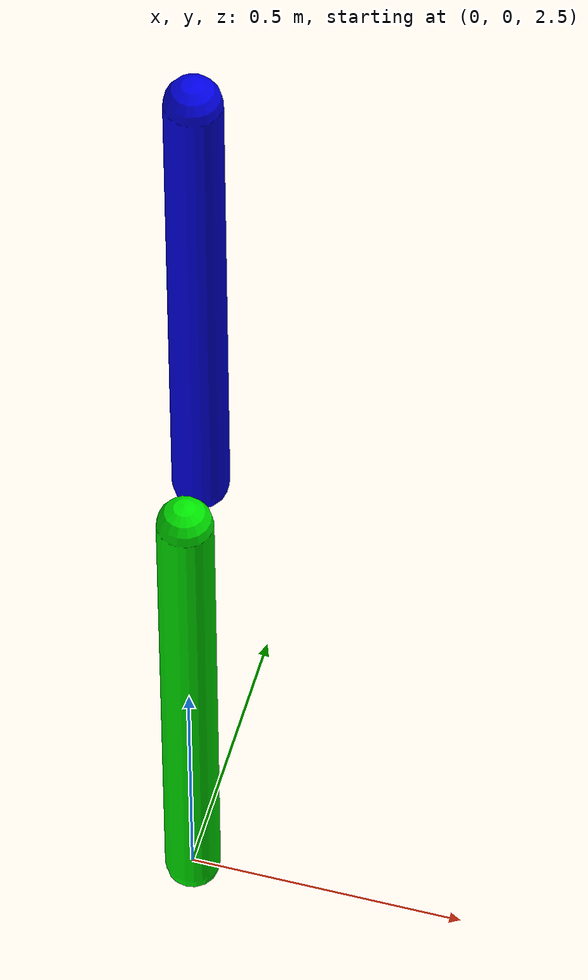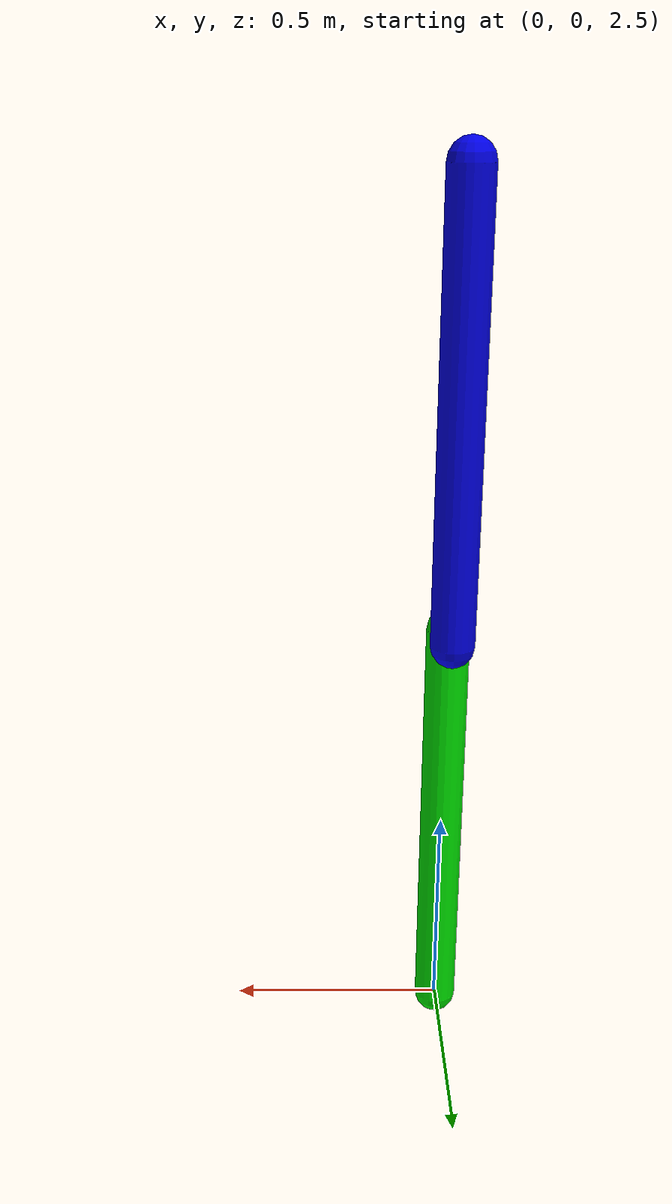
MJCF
<mujoco>
    <option timestep="0.002" integrator="RK4" gravity ="0 0 -9.81" />
    <asset>
        <material name="green" rgba="0 0.9 0 1" />
        <material name="blue" rgba="0 0 0.9 1" />
        <texture name="grid" type="2d" builtin="checker" width="512" height="512" rgb1=".1 .2 .3" rgb2=".2 .3 .4" />
        <material name="grid" texture="grid" texrepeat="1 1" texuniform="true" reflectance=".2" />
    </asset>

    <worldbody>
        <light diffuse="0.3 0.3 0.3" pos="1 0 3" dir="-1 0 -3" />
        <geom type="plane" size="10 10 0.1"  material="grid" />

        <body pos="0 0 3.0" euler="0 0 0">
            <joint name="joint1" type="hinge" axis="0 -1 0" pos="0 0 -0.5" />
            <geom type="capsule" size="0.05 0.5" mass="1" material="green" />

            <body pos="0 0.1 1" euler="0 0 0">
                <joint name="joint2" type="hinge" axis="0 -1 0" pos="0 0 -0.5"  />
                <geom type="capsule" size="0.05 0.5" mass="1" material="blue" />
            </body>

        </body>
    </worldbody>
	<actuator>
	    <position name="pos_ctrl1" joint="joint1" kp="10" />
	    <velocity name="vel_ctrl1" joint="joint1" kv="1" />
	    <motor name="trq_ctrl1" joint="joint1" ctrllimited="true" ctrlrange="-100 100" />
        <position name="pos_ctrl2" joint="joint2" kp="10" />
	    <velocity name="vel_ctrl2" joint="joint2" kv="1" />
	    <motor name="trq_ctrl2" joint="joint2" ctrllimited="true" ctrlrange="-100 100" />
	</actuator>
	<sensor>
	    <jointpos name="pos_sensor1" joint="joint1" />
	    <jointvel name="vel_sensor1" joint="joint1" />
        <jointpos name="pos_sensor2" joint="joint2" />
	    <jointvel name="vel_sensor2" joint="joint2" />
	</sensor>
</mujoco>
